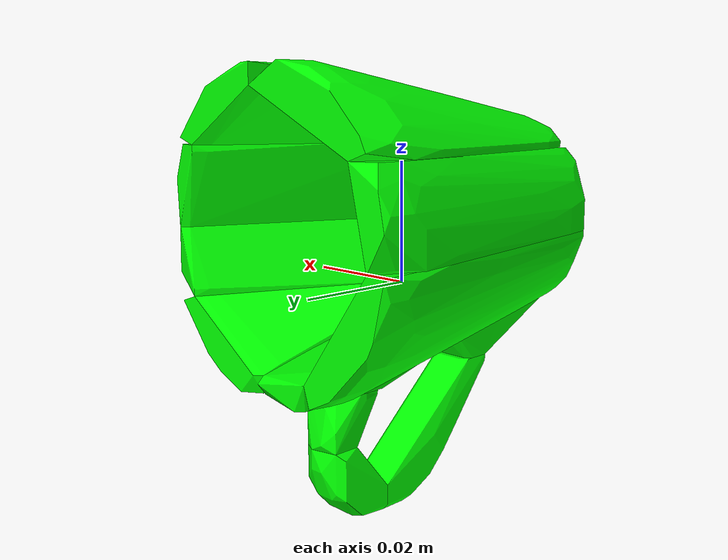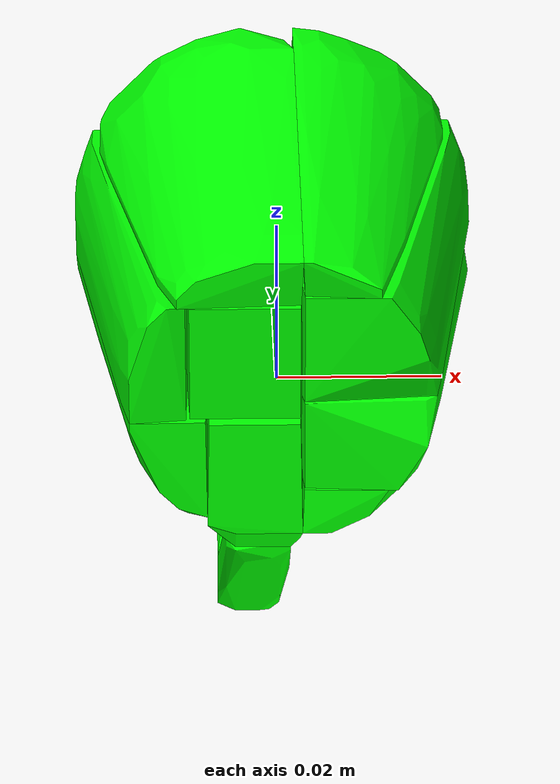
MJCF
<mujoco model="shapenet9-6">
  <asset>
    <mesh file="meshes/shapenet9-6/shapenet9-6_0.stl" name="shapenet9-6_0" scale="0.1 0.1 0.1"/>
    <mesh file="meshes/shapenet9-6/shapenet9-6_1.stl" name="shapenet9-6_1" scale="0.1 0.1 0.1"/>
    <mesh file="meshes/shapenet9-6/shapenet9-6_2.stl" name="shapenet9-6_2" scale="0.1 0.1 0.1"/>
    <mesh file="meshes/shapenet9-6/shapenet9-6_3.stl" name="shapenet9-6_3" scale="0.1 0.1 0.1"/>
    <mesh file="meshes/shapenet9-6/shapenet9-6_4.stl" name="shapenet9-6_4" scale="0.1 0.1 0.1"/>
    <mesh file="meshes/shapenet9-6/shapenet9-6_5.stl" name="shapenet9-6_5" scale="0.1 0.1 0.1"/>
    <mesh file="meshes/shapenet9-6/shapenet9-6_6.stl" name="shapenet9-6_6" scale="0.1 0.1 0.1"/>
    <mesh file="meshes/shapenet9-6/shapenet9-6_7.stl" name="shapenet9-6_7" scale="0.1 0.1 0.1"/>
    <mesh file="meshes/shapenet9-6/shapenet9-6_8.stl" name="shapenet9-6_8" scale="0.1 0.1 0.1"/>
    <mesh file="meshes/shapenet9-6/shapenet9-6_9.stl" name="shapenet9-6_9" scale="0.1 0.1 0.1"/>
    <mesh file="meshes/shapenet9-6/shapenet9-6_10.stl" name="shapenet9-6_10" scale="0.1 0.1 0.1"/>
    <mesh file="meshes/shapenet9-6/shapenet9-6_11.stl" name="shapenet9-6_11" scale="0.1 0.1 0.1"/>
    <mesh file="meshes/shapenet9-6/shapenet9-6_12.stl" name="shapenet9-6_12" scale="0.1 0.1 0.1"/>
  </asset>
  <worldbody>
    <body>
      <body name="collision">
        <geom pos="0 0 0" mesh="shapenet9-6_0" type="mesh" solimp="0.998 0.998 0.001" solref="0.001 1" density="100" friction="0.95 0.3 0.1" rgba="0 1 0 1" group="1" condim="4"/>
        <geom pos="0 0 0" mesh="shapenet9-6_1" type="mesh" solimp="0.998 0.998 0.001" solref="0.001 1" density="100" friction="0.95 0.3 0.1" rgba="0 1 0 1" group="1" condim="4"/>
        <geom pos="0 0 0" mesh="shapenet9-6_2" type="mesh" solimp="0.998 0.998 0.001" solref="0.001 1" density="100" friction="0.95 0.3 0.1" rgba="0 1 0 1" group="1" condim="4"/>
        <geom pos="0 0 0" mesh="shapenet9-6_3" type="mesh" solimp="0.998 0.998 0.001" solref="0.001 1" density="100" friction="0.95 0.3 0.1" rgba="0 1 0 1" group="1" condim="4"/>
        <geom pos="0 0 0" mesh="shapenet9-6_4" type="mesh" solimp="0.998 0.998 0.001" solref="0.001 1" density="100" friction="0.95 0.3 0.1" rgba="0 1 0 1" group="1" condim="4"/>
        <geom pos="0 0 0" mesh="shapenet9-6_5" type="mesh" solimp="0.998 0.998 0.001" solref="0.001 1" density="100" friction="0.95 0.3 0.1" rgba="0 1 0 1" group="1" condim="4"/>
        <geom pos="0 0 0" mesh="shapenet9-6_6" type="mesh" solimp="0.998 0.998 0.001" solref="0.001 1" density="100" friction="0.95 0.3 0.1" rgba="0 1 0 1" group="1" condim="4"/>
        <geom pos="0 0 0" mesh="shapenet9-6_7" type="mesh" solimp="0.998 0.998 0.001" solref="0.001 1" density="100" friction="0.95 0.3 0.1" rgba="0 1 0 1" group="1" condim="4"/>
        <geom pos="0 0 0" mesh="shapenet9-6_8" type="mesh" solimp="0.998 0.998 0.001" solref="0.001 1" density="100" friction="0.95 0.3 0.1" rgba="0 1 0 1" group="1" condim="4"/>
        <geom pos="0 0 0" mesh="shapenet9-6_9" type="mesh" solimp="0.998 0.998 0.001" solref="0.001 1" density="100" friction="0.95 0.3 0.1" rgba="0 1 0 1" group="1" condim="4"/>
        <geom pos="0 0 0" mesh="shapenet9-6_10" type="mesh" solimp="0.998 0.998 0.001" solref="0.001 1" density="100" friction="0.95 0.3 0.1" rgba="0 1 0 1" group="1" condim="4"/>
        <geom pos="0 0 0" mesh="shapenet9-6_11" type="mesh" solimp="0.998 0.998 0.001" solref="0.001 1" density="100" friction="0.95 0.3 0.1" rgba="0 1 0 1" group="1" condim="4"/>
        <geom pos="0 0 0" mesh="shapenet9-6_12" type="mesh" solimp="0.998 0.998 0.001" solref="0.001 1" density="100" friction="0.95 0.3 0.1" rgba="0 1 0 1" group="1" condim="4"/>
      </body>
      <body name="visual">
        <geom pos="0 0 0" mesh="shapenet9-6_0" type="mesh" rgba="0 1 0 1" conaffinity="0" contype="0" group="0" mass="0.0001"/>
        <geom pos="0 0 0" mesh="shapenet9-6_1" type="mesh" rgba="0 1 0 1" conaffinity="0" contype="0" group="0" mass="0.0001"/>
        <geom pos="0 0 0" mesh="shapenet9-6_2" type="mesh" rgba="0 1 0 1" conaffinity="0" contype="0" group="0" mass="0.0001"/>
        <geom pos="0 0 0" mesh="shapenet9-6_3" type="mesh" rgba="0 1 0 1" conaffinity="0" contype="0" group="0" mass="0.0001"/>
        <geom pos="0 0 0" mesh="shapenet9-6_4" type="mesh" rgba="0 1 0 1" conaffinity="0" contype="0" group="0" mass="0.0001"/>
        <geom pos="0 0 0" mesh="shapenet9-6_5" type="mesh" rgba="0 1 0 1" conaffinity="0" contype="0" group="0" mass="0.0001"/>
        <geom pos="0 0 0" mesh="shapenet9-6_6" type="mesh" rgba="0 1 0 1" conaffinity="0" contype="0" group="0" mass="0.0001"/>
        <geom pos="0 0 0" mesh="shapenet9-6_7" type="mesh" rgba="0 1 0 1" conaffinity="0" contype="0" group="0" mass="0.0001"/>
        <geom pos="0 0 0" mesh="shapenet9-6_8" type="mesh" rgba="0 1 0 1" conaffinity="0" contype="0" group="0" mass="0.0001"/>
        <geom pos="0 0 0" mesh="shapenet9-6_9" type="mesh" rgba="0 1 0 1" conaffinity="0" contype="0" group="0" mass="0.0001"/>
        <geom pos="0 0 0" mesh="shapenet9-6_10" type="mesh" rgba="0 1 0 1" conaffinity="0" contype="0" group="0" mass="0.0001"/>
        <geom pos="0 0 0" mesh="shapenet9-6_11" type="mesh" rgba="0 1 0 1" conaffinity="0" contype="0" group="0" mass="0.0001"/>
        <geom pos="0 0 0" mesh="shapenet9-6_12" type="mesh" rgba="0 1 0 1" conaffinity="0" contype="0" group="0" mass="0.0001"/>
      </body>
      <site rgba="0 0 0 0" size="0.005" pos="0 0 -0.06" name="bottom_site"/>
      <site rgba="0 0 0 0" size="0.005" pos="0 0 0.04" name="top_site"/>
      <site rgba="0 0 0 0" size="0.005" pos="0.025 0.025 0" name="horizontal_radius_site"/>
    </body>
  </worldbody>
</mujoco>
